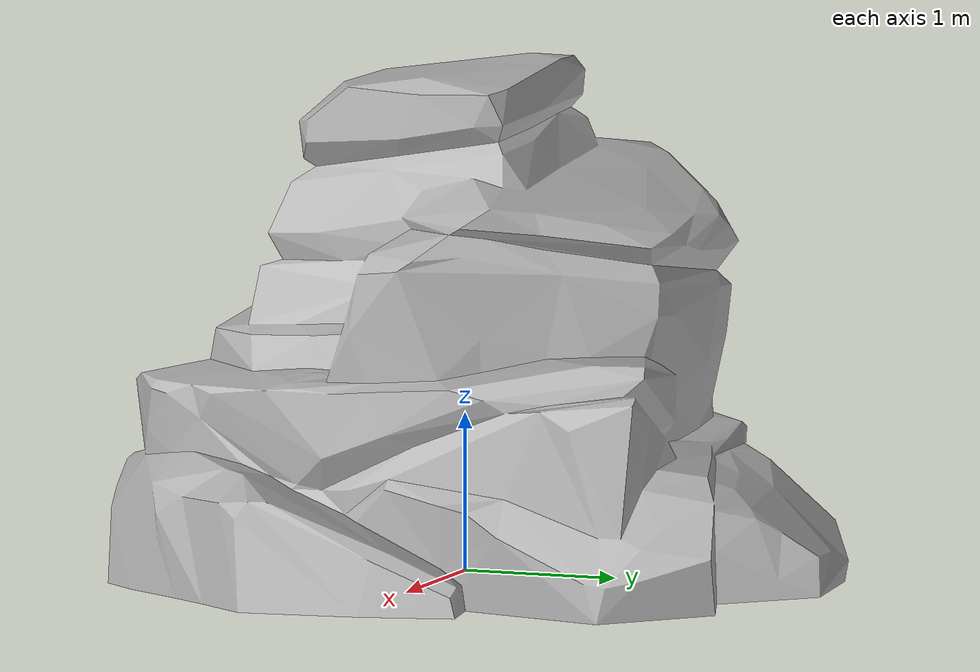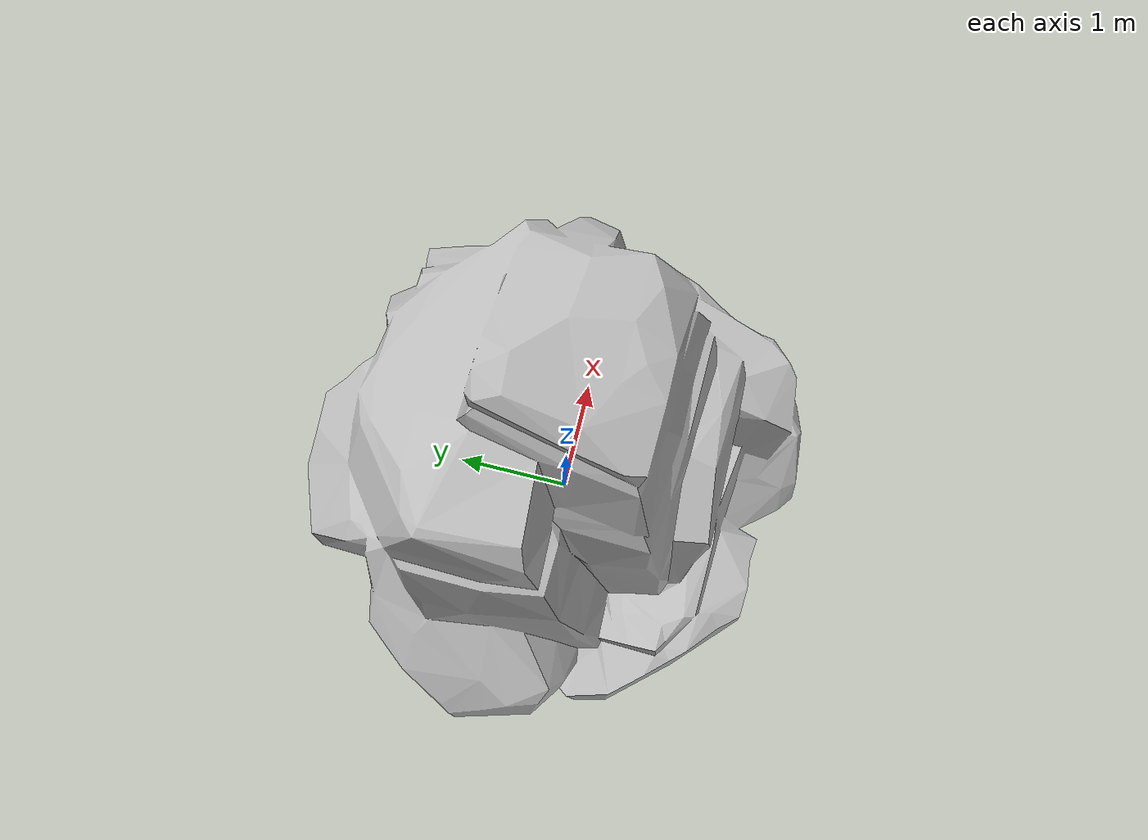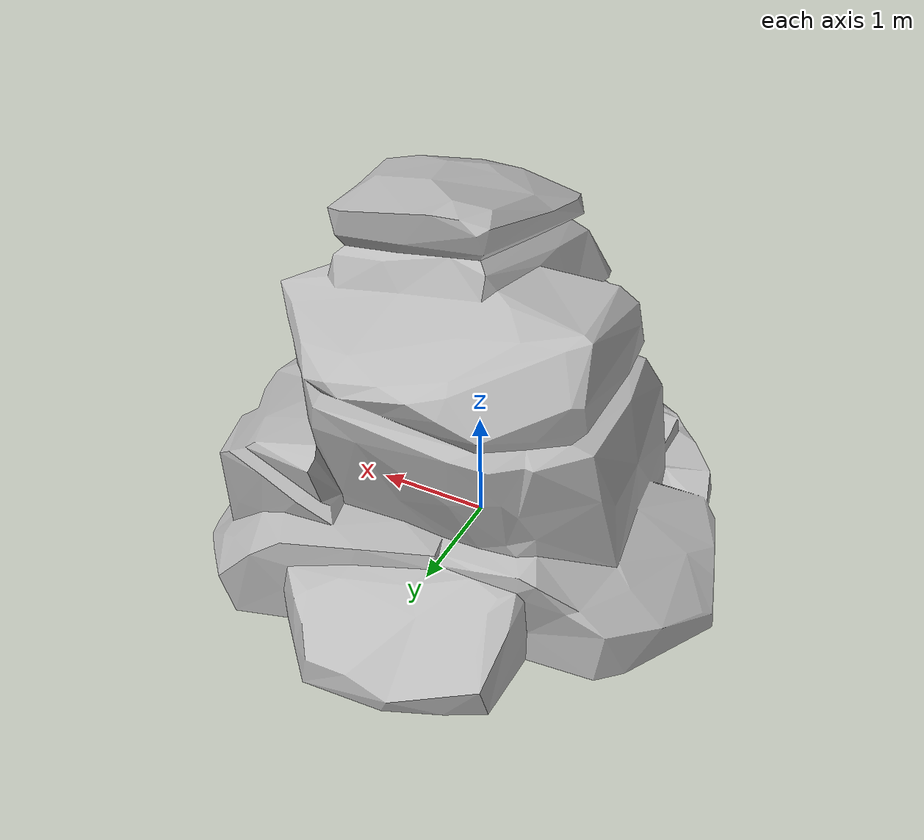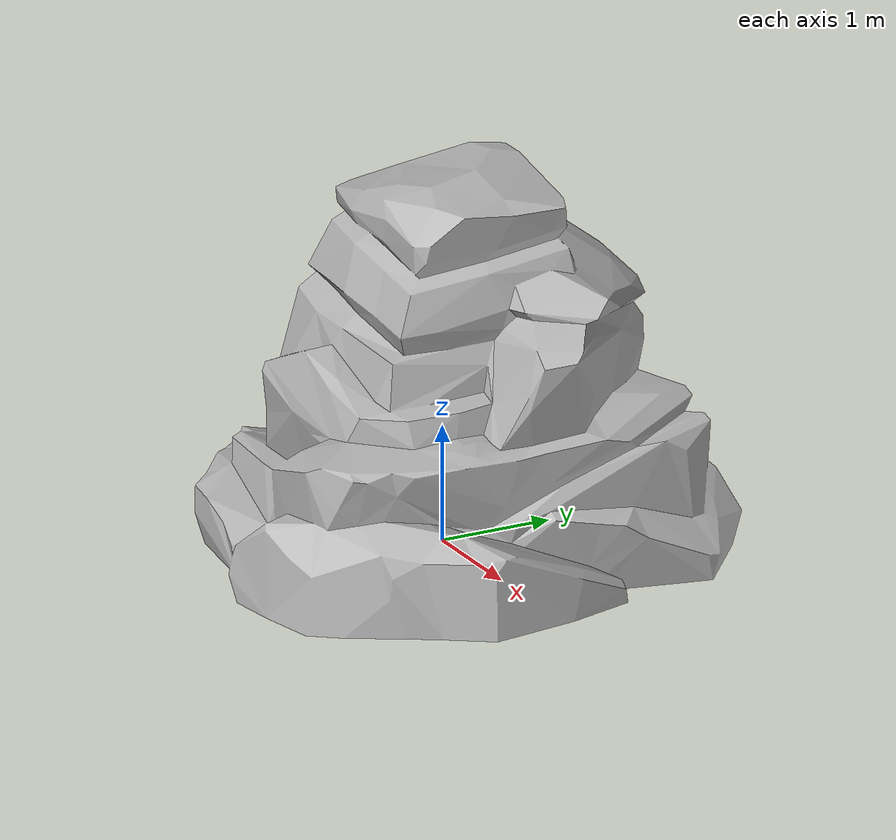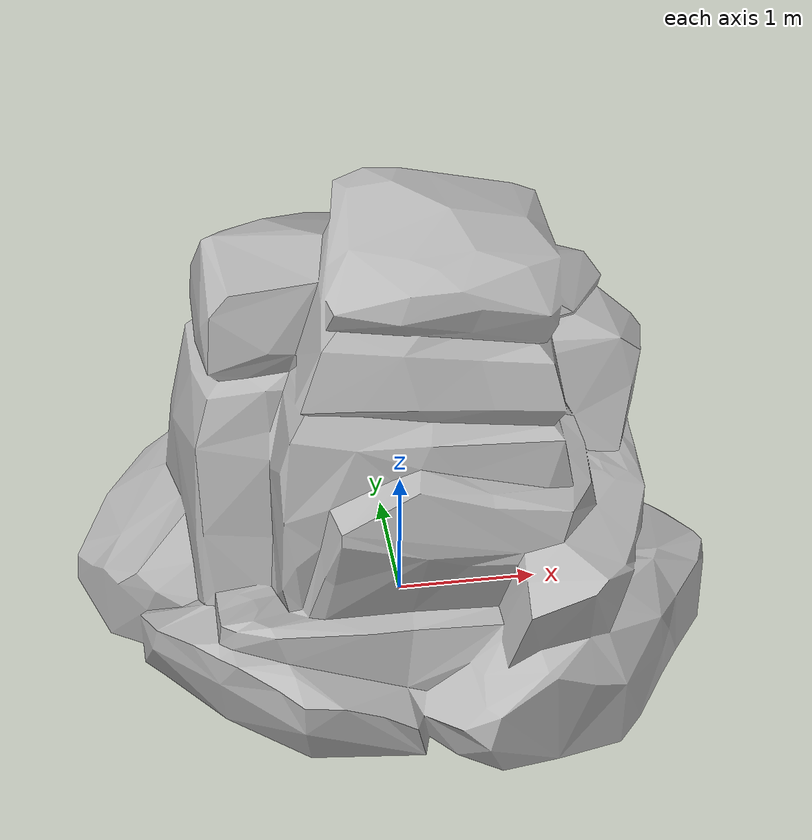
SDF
<?xml version="1.0" ?>
<sdf version='1.4'>
  <model name="rock">
      <static>1</static>
        <link name='link_1'>
            <visual name='visual'>
            <pose frame=''>0 0 0 0 0 0</pose>
            <geometry>
            <mesh>
                <uri>model://rock/meshes/rock.dae</uri>
                <scale>1.0 1.0 1.0</scale>
            </mesh>
            </geometry>
            <cast_shadows>0</cast_shadows>
            <transparency>0</transparency>
        </visual>

        <collision name='collision'>
            <laser_retro>0</laser_retro>
            <pose frame=''>0 0 0 0 0 0</pose>
            <geometry>
            <mesh>
                <uri>model://rock/meshes/rock.dae</uri>
                <scale>1.0 1.0 1.0</scale>
            </mesh>
            </geometry>
        </collision>
        </link>
  </model>
</sdf>
